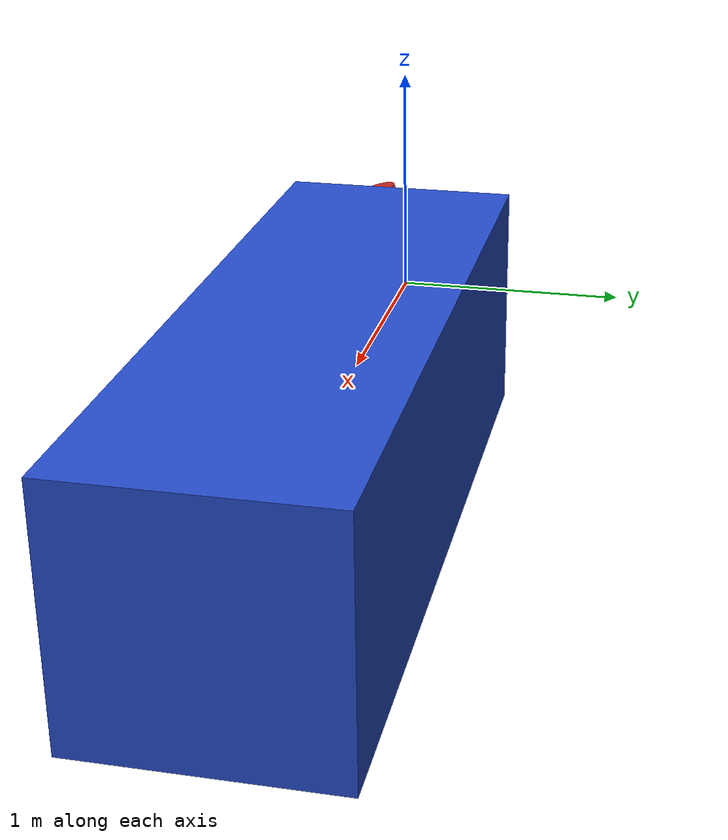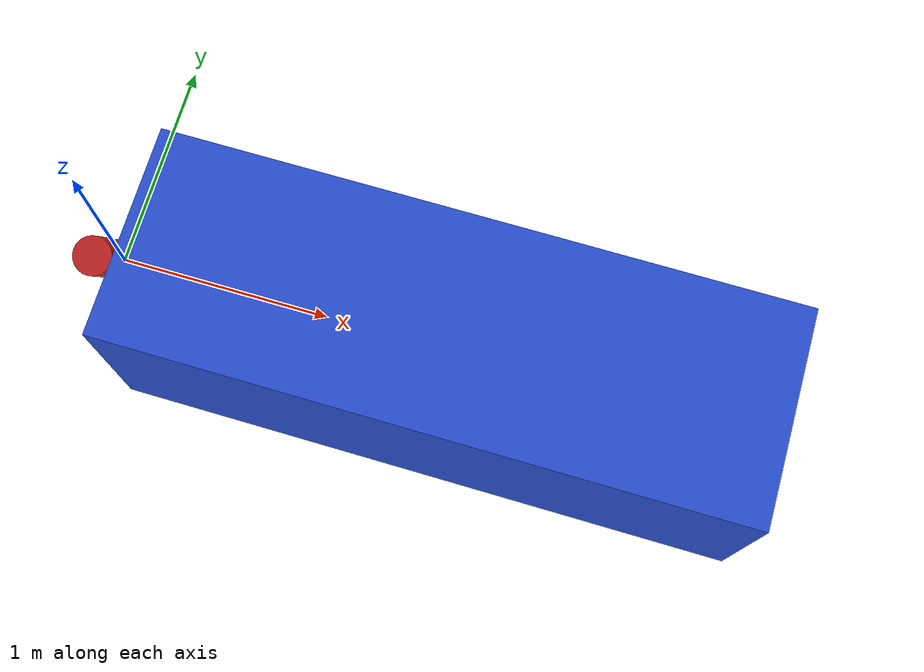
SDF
<?xml version='1.0'?>
<sdf version='1.7'>
  <model name='large_cuboid_tilted_handle'>
    <link name='link'>
      <inertial>
        <mass>0.1</mass>
        <inertia>
          <ixx>0.0833333</ixx>
          <ixy>0</ixy>
          <ixz>0</ixz>
          <iyy>0.0166667</iyy>
          <iyz>0</iyz>
          <izz>0.0833333</izz>
        </inertia>
        <pose>0 0 0 0 -0 0</pose>
      </inertial>
      <self_collide>0</self_collide>
      <enable_wind>0</enable_wind>
      <kinematic>0</kinematic>
      <pose>1.6 -0 -0 0 -0 1.57</pose>
      <gravity>1</gravity>
      <visual name='visual'>
        <geometry>
          <box>
            <size>1 3 1</size>
          </box>
        </geometry>
        <material>
          <lighting>1</lighting>
          <script>
            <uri>file://media/materials/scripts/gazebo.material</uri>
            <name>Gazebo/Blue</name>
          </script>
          <shader type='pixel'>
            <normal_map>__default__</normal_map>
          </shader>
          <ambient>0 0 1 1</ambient>
          <diffuse>0 0 1 1</diffuse>
          <specular>0.1 0.1 0.1 1</specular>
          <emissive>0 0 0 1</emissive>
        </material>
        <pose>0 0 0 0 -0 0</pose>
        <transparency>0</transparency>
        <cast_shadows>1</cast_shadows>
      </visual>
      <collision name='large_cuboid_title_handle_collision'>
        <laser_retro>0</laser_retro>
        <max_contacts>10</max_contacts>
        <pose>0 0 0 0 -0 0</pose>
        <geometry>
          <box>
            <size>1 3 1</size>
          </box>
        </geometry>
        <surface>
          <friction>
            <ode>
              <mu>0.5</mu>
              <mu2>1</mu2>
              <fdir1>0 0 0</fdir1>
              <slip1>0</slip1>
              <slip2>0</slip2>
            </ode>
            <torsional>
              <coefficient>1</coefficient>
              <patch_radius>0</patch_radius>
              <surface_radius>0</surface_radius>
              <use_patch_radius>1</use_patch_radius>
              <ode>
                <slip>0</slip>
              </ode>
            </torsional>
          </friction>
          <bounce>
            <restitution_coefficient>0</restitution_coefficient>
            <threshold>1e+14</threshold>
          </bounce>
          <contact>
            <collide_without_contact>0</collide_without_contact>
            <collide_without_contact_bitmask>1</collide_without_contact_bitmask>
            <collide_bitmask>1</collide_bitmask>
            <ode>
              <soft_cfm>0</soft_cfm>
              <soft_erp>0.2</soft_erp>
              <kp>1e+13</kp>
              <kd>1e+10</kd>
              <max_vel>0</max_vel>
              <min_depth>0</min_depth>
            </ode>
            <bullet>
              <split_impulse>1</split_impulse>
              <split_impulse_penetration_threshold>-0.01</split_impulse_penetration_threshold>
              <soft_cfm>0</soft_cfm>
              <soft_erp>0.2</soft_erp>
              <kp>1e+13</kp>
              <kd>1e+10</kd>
            </bullet>
          </contact>
        </surface>
      </collision>
    </link>
    <link name='link_0'>
      <inertial>
        <mass>0.05</mass>
        <inertia>
          <ixx>0.00388155</ixx>
          <ixy>0</ixy>
          <ixz>0</ixz>
          <iyy>0.00388155</iyy>
          <iyz>0</iyz>
          <izz>0.0002025</izz>
        </inertia>
        <pose>0 0 0 0 -0 0</pose>
      </inertial>
      <pose>0 0 0 0.3 -0 0</pose>
      <self_collide>0</self_collide>
      <enable_wind>0</enable_wind>
      <kinematic>0</kinematic>
      <gravity>1</gravity>
      <visual name='visual'>
        <pose>0 0 0 0 -0 0</pose>
        <geometry>
          <cylinder>
            <radius>0.09</radius>
            <length>0.9525</length>
          </cylinder>
        </geometry>
        <material>
          <lighting>1</lighting>
          <script>
            <uri>file://media/materials/scripts/gazebo.material</uri>
            <name>Gazebo/Red</name>
          </script>
          <shader type='pixel'>
            <normal_map>__default__</normal_map>
          </shader>
          <ambient>1 0 0 1</ambient>
          <diffuse>1 0 0 1</diffuse>
          <specular>0.1 0.1 0.1 1</specular>
          <emissive>0 0 0 1</emissive>
        </material>
        <transparency>0</transparency>
        <cast_shadows>0</cast_shadows>
      </visual>
      <collision name='collision'>
        <laser_retro>0</laser_retro>
        <max_contacts>10</max_contacts>
        <pose>0 0 0 0 -0 0</pose>
        <geometry>
          <cylinder>
            <radius>0.09</radius>
            <length>0.952508</length>
          </cylinder>
        </geometry>
        <surface>
          <friction>
            <ode>
              <mu>1</mu>
              <mu2>1</mu2>
              <fdir1>0 0 -1</fdir1>
              <slip1>0</slip1>
              <slip2>0</slip2>
            </ode>
            <torsional>
              <coefficient>1</coefficient>
              <patch_radius>0.1</patch_radius>
              <surface_radius>0</surface_radius>
              <use_patch_radius>1</use_patch_radius>
              <ode>
                <slip>0</slip>
              </ode>
            </torsional>
          </friction>
          <bounce>
            <restitution_coefficient>0</restitution_coefficient>
            <threshold>1e+06</threshold>
          </bounce>
          <contact>
            <collide_without_contact>0</collide_without_contact>
            <collide_without_contact_bitmask>1</collide_without_contact_bitmask>
            <collide_bitmask>1</collide_bitmask>
            <ode>
              <soft_cfm>0</soft_cfm>
              <soft_erp>0.2</soft_erp>
              <kp>1e+13</kp>
              <kd>1e+12</kd>
              <max_vel>0</max_vel>
              <min_depth>0</min_depth>
            </ode>
            <bullet>
              <split_impulse>1</split_impulse>
              <split_impulse_penetration_threshold>-0.01</split_impulse_penetration_threshold>
              <soft_cfm>0</soft_cfm>
              <soft_erp>0.2</soft_erp>
              <kp>1e+13</kp>
              <kd>1e+12</kd>
            </bullet>
          </contact>
        </surface>
      </collision>
    </link>
    <joint name='link_JOINT_0' type='fixed'>
      <parent>link</parent>
      <child>link_0</child>
      <pose>0 0 0 0 -0 0</pose>
      <physics>
        <ode>
          <limit>
            <cfm>0</cfm>
            <erp>0.2</erp>
          </limit>
          <suspension>
            <cfm>0</cfm>
            <erp>0.2</erp>
          </suspension>
        </ode>
      </physics>
    </joint>
    <static>0</static>
    <allow_auto_disable>1</allow_auto_disable>
  </model>
</sdf>
